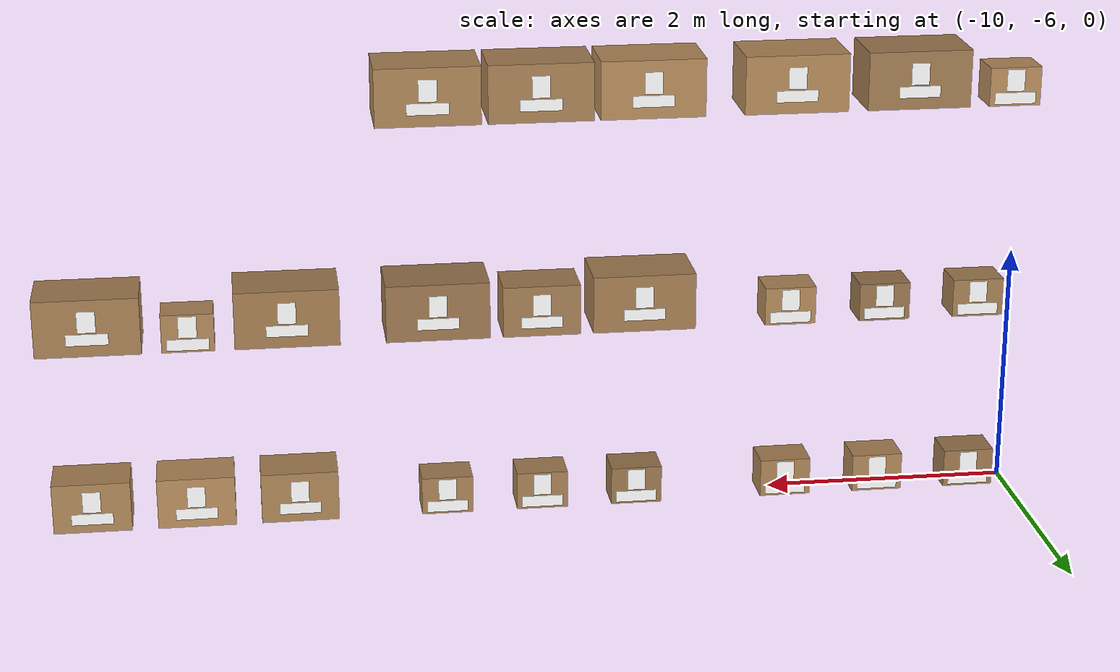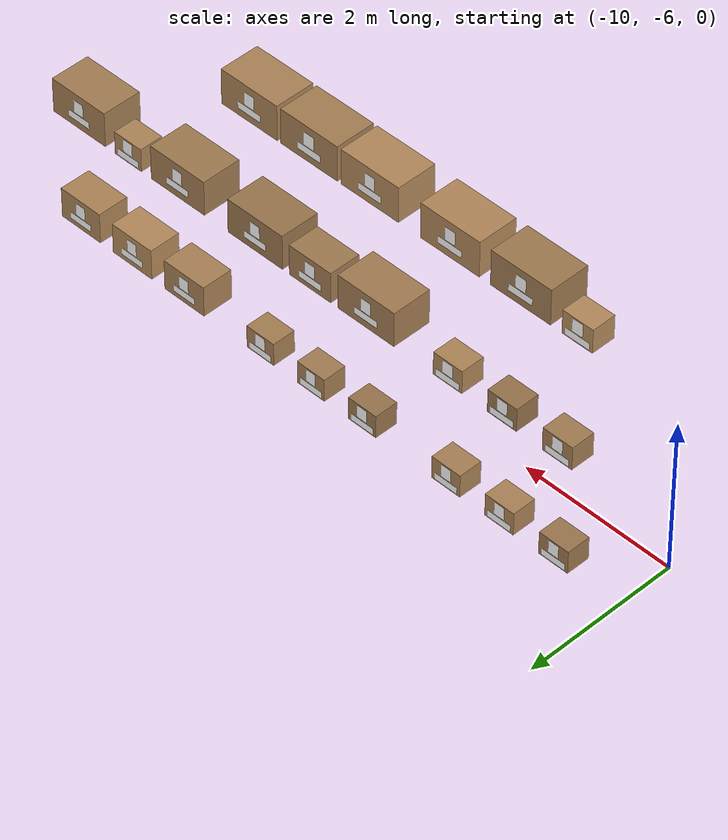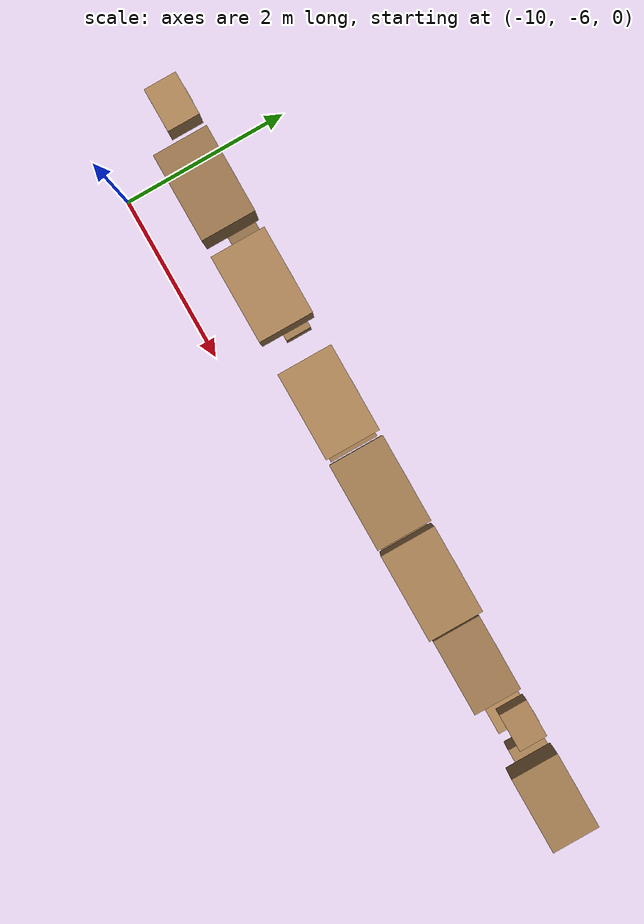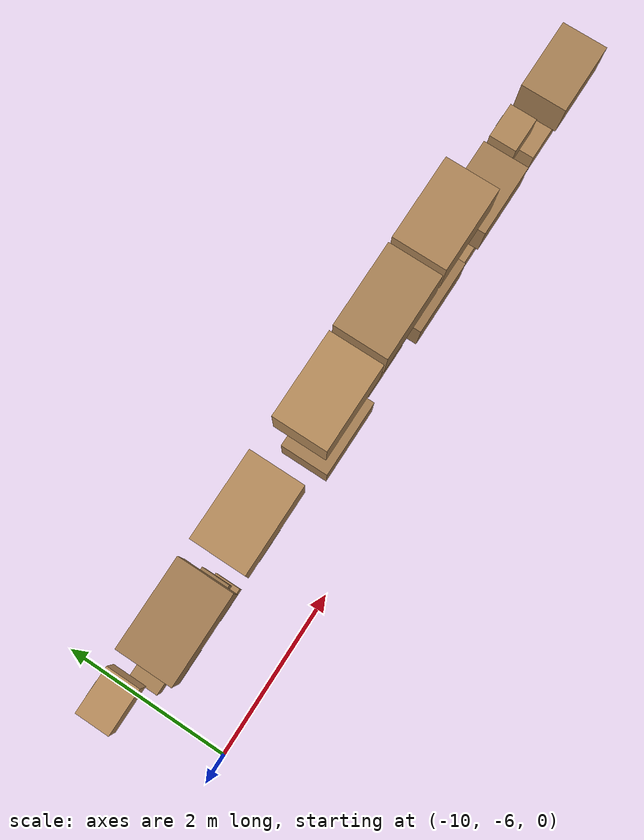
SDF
<sdf version="1.9">
 <world name="warehouse">
  <model name="inventory">
   <static>true</static>
   <link name="box_A_01_1_0">
    <visual name="body">
     <pose>-9.4 -5.07 0.55 0 0 0</pose>
     <geometry><box><size>0.4 0.3 0.3</size></box></geometry>
     <material>
      <ambient>0.308155 0.235648 0.154078 1</ambient>
      <diffuse>0.616311 0.471296 0.308155 1</diffuse>
      <specular>0.05 0.05 0.05 1</specular>
      <pbr><metal><metalness>0.0</metalness><roughness>0.9</roughness></metal></pbr>
     </material>
    </visual>
    <collision name="body_c">
     <pose>-9.4 -5.07 0.55 0 0 0</pose>
     <geometry><box><size>0.4 0.3 0.3</size></box></geometry>
    </collision>
    <visual name="label">
     <pose>-9.4 -4.916 0.6 1.5708 0 3.14159</pose>
     <geometry>
      <mesh><uri>model://warehouse_assets/meshes/label_quad.obj</uri><scale>0.14 0.17 1</scale></mesh>
     </geometry>
     <material>
      <ambient>1 1 1 1</ambient>
      <diffuse>1 1 1 1</diffuse>
      <specular>0 0 0 1</specular>
      <pbr>
       <metal>
        <albedo_map>model://warehouse_assets/materials/textures/box_A0110.png</albedo_map>
        <metalness>0.0</metalness>
        <roughness>1.0</roughness>
       </metal>
      </pbr>
     </material>
    </visual>
    <visual name="placard">
     <pose>-9.4 -4.916 0.46 1.5708 0 3.14159</pose>
     <geometry>
      <mesh><uri>model://warehouse_assets/meshes/label_quad.obj</uri><scale>0.32 0.09 1</scale></mesh>
     </geometry>
     <material>
      <ambient>1 1 1 1</ambient>
      <diffuse>1 1 1 1</diffuse>
      <specular>0 0 0 1</specular>
      <pbr>
       <metal>
        <albedo_map>model://warehouse_assets/materials/textures/placard_A0110.png</albedo_map>
        <metalness>0.0</metalness>
        <roughness>1.0</roughness>
       </metal>
      </pbr>
     </material>
    </visual>
   </link>
   <link name="box_A_01_1_1">
    <visual name="body">
     <pose>-8.65 -5.07 0.55 0 0 0</pose>
     <geometry><box><size>0.4 0.3 0.3</size></box></geometry>
     <material>
      <ambient>0.340595 0.260455 0.170297 1</ambient>
      <diffuse>0.68119 0.52091 0.340595 1</diffuse>
      <specular>0.05 0.05 0.05 1</specular>
      <pbr><metal><metalness>0.0</metalness><roughness>0.9</roughness></metal></pbr>
     </material>
    </visual>
    <collision name="body_c">
     <pose>-8.65 -5.07 0.55 0 0 0</pose>
     <geometry><box><size>0.4 0.3 0.3</size></box></geometry>
    </collision>
    <visual name="label">
     <pose>-8.65 -4.916 0.6 1.5708 0 3.14159</pose>
     <geometry>
      <mesh><uri>model://warehouse_assets/meshes/label_quad.obj</uri><scale>0.14 0.17 1</scale></mesh>
     </geometry>
     <material>
      <ambient>1 1 1 1</ambient>
      <diffuse>1 1 1 1</diffuse>
      <specular>0 0 0 1</specular>
      <pbr>
       <metal>
        <albedo_map>model://warehouse_assets/materials/textures/box_A0111.png</albedo_map>
        <metalness>0.0</metalness>
        <roughness>1.0</roughness>
       </metal>
      </pbr>
     </material>
    </visual>
    <visual name="placard">
     <pose>-8.65 -4.916 0.46 1.5708 0 3.14159</pose>
     <geometry>
      <mesh><uri>model://warehouse_assets/meshes/label_quad.obj</uri><scale>0.32 0.09 1</scale></mesh>
     </geometry>
     <material>
      <ambient>1 1 1 1</ambient>
      <diffuse>1 1 1 1</diffuse>
      <specular>0 0 0 1</specular>
      <pbr>
       <metal>
        <albedo_map>model://warehouse_assets/materials/textures/placard_A0111.png</albedo_map>
        <metalness>0.0</metalness>
        <roughness>1.0</roughness>
       </metal>
      </pbr>
     </material>
    </visual>
   </link>
   <link name="box_A_01_1_2">
    <visual name="body">
     <pose>-7.9 -5.07 0.55 0 0 0</pose>
     <geometry><box><size>0.4 0.3 0.3</size></box></geometry>
     <material>
      <ambient>0.333937 0.255364 0.166969 1</ambient>
      <diffuse>0.667874 0.510727 0.333937 1</diffuse>
      <specular>0.05 0.05 0.05 1</specular>
      <pbr><metal><metalness>0.0</metalness><roughness>0.9</roughness></metal></pbr>
     </material>
    </visual>
    <collision name="body_c">
     <pose>-7.9 -5.07 0.55 0 0 0</pose>
     <geometry><box><size>0.4 0.3 0.3</size></box></geometry>
    </collision>
    <visual name="label">
     <pose>-7.9 -4.916 0.6 1.5708 0 3.14159</pose>
     <geometry>
      <mesh><uri>model://warehouse_assets/meshes/label_quad.obj</uri><scale>0.14 0.17 1</scale></mesh>
     </geometry>
     <material>
      <ambient>1 1 1 1</ambient>
      <diffuse>1 1 1 1</diffuse>
      <specular>0 0 0 1</specular>
      <pbr>
       <metal>
        <albedo_map>model://warehouse_assets/materials/textures/box_A0112.png</albedo_map>
        <metalness>0.0</metalness>
        <roughness>1.0</roughness>
       </metal>
      </pbr>
     </material>
    </visual>
    <visual name="placard">
     <pose>-7.9 -4.916 0.46 1.5708 0 3.14159</pose>
     <geometry>
      <mesh><uri>model://warehouse_assets/meshes/label_quad.obj</uri><scale>0.32 0.09 1</scale></mesh>
     </geometry>
     <material>
      <ambient>1 1 1 1</ambient>
      <diffuse>1 1 1 1</diffuse>
      <specular>0 0 0 1</specular>
      <pbr>
       <metal>
        <albedo_map>model://warehouse_assets/materials/textures/placard_A0112.png</albedo_map>
        <metalness>0.0</metalness>
        <roughness>1.0</roughness>
       </metal>
      </pbr>
     </material>
    </visual>
   </link>
   <link name="box_A_01_2_0">
    <visual name="body">
     <pose>-9.4 -5.07 2 0 0 0</pose>
     <geometry><box><size>0.4 0.3 0.3</size></box></geometry>
     <material>
      <ambient>0.323517 0.247396 0.161759 1</ambient>
      <diffuse>0.647035 0.494791 0.323517 1</diffuse>
      <specular>0.05 0.05 0.05 1</specular>
      <pbr><metal><metalness>0.0</metalness><roughness>0.9</roughness></metal></pbr>
     </material>
    </visual>
    <collision name="body_c">
     <pose>-9.4 -5.07 2 0 0 0</pose>
     <geometry><box><size>0.4 0.3 0.3</size></box></geometry>
    </collision>
    <visual name="label">
     <pose>-9.4 -4.916 2.05 1.5708 0 3.14159</pose>
     <geometry>
      <mesh><uri>model://warehouse_assets/meshes/label_quad.obj</uri><scale>0.14 0.17 1</scale></mesh>
     </geometry>
     <material>
      <ambient>1 1 1 1</ambient>
      <diffuse>1 1 1 1</diffuse>
      <specular>0 0 0 1</specular>
      <pbr>
       <metal>
        <albedo_map>model://warehouse_assets/materials/textures/box_A0120.png</albedo_map>
        <metalness>0.0</metalness>
        <roughness>1.0</roughness>
       </metal>
      </pbr>
     </material>
    </visual>
    <visual name="placard">
     <pose>-9.4 -4.916 1.91 1.5708 0 3.14159</pose>
     <geometry>
      <mesh><uri>model://warehouse_assets/meshes/label_quad.obj</uri><scale>0.32 0.09 1</scale></mesh>
     </geometry>
     <material>
      <ambient>1 1 1 1</ambient>
      <diffuse>1 1 1 1</diffuse>
      <specular>0 0 0 1</specular>
      <pbr>
       <metal>
        <albedo_map>model://warehouse_assets/materials/textures/placard_A0120.png</albedo_map>
        <metalness>0.0</metalness>
        <roughness>1.0</roughness>
       </metal>
      </pbr>
     </material>
    </visual>
   </link>
   <link name="box_A_01_2_1">
    <visual name="body">
     <pose>-8.65 -5.07 2 0 0 0</pose>
     <geometry><box><size>0.4 0.3 0.3</size></box></geometry>
     <material>
      <ambient>0.299613 0.229116 0.149807 1</ambient>
      <diffuse>0.599227 0.458232 0.299613 1</diffuse>
      <specular>0.05 0.05 0.05 1</specular>
      <pbr><metal><metalness>0.0</metalness><roughness>0.9</roughness></metal></pbr>
     </material>
    </visual>
    <collision name="body_c">
     <pose>-8.65 -5.07 2 0 0 0</pose>
     <geometry><box><size>0.4 0.3 0.3</size></box></geometry>
    </collision>
    <visual name="label">
     <pose>-8.65 -4.916 2.05 1.5708 0 3.14159</pose>
     <geometry>
      <mesh><uri>model://warehouse_assets/meshes/label_quad.obj</uri><scale>0.14 0.17 1</scale></mesh>
     </geometry>
     <material>
      <ambient>1 1 1 1</ambient>
      <diffuse>1 1 1 1</diffuse>
      <specular>0 0 0 1</specular>
      <pbr>
       <metal>
        <albedo_map>model://warehouse_assets/materials/textures/box_A0121.png</albedo_map>
        <metalness>0.0</metalness>
        <roughness>1.0</roughness>
       </metal>
      </pbr>
     </material>
    </visual>
    <visual name="placard">
     <pose>-8.65 -4.916 1.91 1.5708 0 3.14159</pose>
     <geometry>
      <mesh><uri>model://warehouse_assets/meshes/label_quad.obj</uri><scale>0.32 0.09 1</scale></mesh>
     </geometry>
     <material>
      <ambient>1 1 1 1</ambient>
      <diffuse>1 1 1 1</diffuse>
      <specular>0 0 0 1</specular>
      <pbr>
       <metal>
        <albedo_map>model://warehouse_assets/materials/textures/placard_A0121.png</albedo_map>
        <metalness>0.0</metalness>
        <roughness>1.0</roughness>
       </metal>
      </pbr>
     </material>
    </visual>
   </link>
   <link name="box_A_01_2_2">
    <visual name="body">
     <pose>-7.9 -5.07 2 0 0 0</pose>
     <geometry><box><size>0.4 0.3 0.3</size></box></geometry>
     <material>
      <ambient>0.347443 0.265692 0.173722 1</ambient>
      <diffuse>0.694887 0.531384 0.347443 1</diffuse>
      <specular>0.05 0.05 0.05 1</specular>
      <pbr><metal><metalness>0.0</metalness><roughness>0.9</roughness></metal></pbr>
     </material>
    </visual>
    <collision name="body_c">
     <pose>-7.9 -5.07 2 0 0 0</pose>
     <geometry><box><size>0.4 0.3 0.3</size></box></geometry>
    </collision>
    <visual name="label">
     <pose>-7.9 -4.916 2.05 1.5708 0 3.14159</pose>
     <geometry>
      <mesh><uri>model://warehouse_assets/meshes/label_quad.obj</uri><scale>0.14 0.17 1</scale></mesh>
     </geometry>
     <material>
      <ambient>1 1 1 1</ambient>
      <diffuse>1 1 1 1</diffuse>
      <specular>0 0 0 1</specular>
      <pbr>
       <metal>
        <albedo_map>model://warehouse_assets/materials/textures/box_A0122.png</albedo_map>
        <metalness>0.0</metalness>
        <roughness>1.0</roughness>
       </metal>
      </pbr>
     </material>
    </visual>
    <visual name="placard">
     <pose>-7.9 -4.916 1.91 1.5708 0 3.14159</pose>
     <geometry>
      <mesh><uri>model://warehouse_assets/meshes/label_quad.obj</uri><scale>0.32 0.09 1</scale></mesh>
     </geometry>
     <material>
      <ambient>1 1 1 1</ambient>
      <diffuse>1 1 1 1</diffuse>
      <specular>0 0 0 1</specular>
      <pbr>
       <metal>
        <albedo_map>model://warehouse_assets/materials/textures/placard_A0122.png</albedo_map>
        <metalness>0.0</metalness>
        <roughness>1.0</roughness>
       </metal>
      </pbr>
     </material>
    </visual>
   </link>
   <link name="box_A_01_3_0">
    <visual name="body">
     <pose>-9.6 -5.07 3.7 0 0 0</pose>
     <geometry><box><size>0.4 0.3 0.3</size></box></geometry>
     <material>
      <ambient>0.358911 0.274461 0.179455 1</ambient>
      <diffuse>0.717822 0.548923 0.358911 1</diffuse>
      <specular>0.05 0.05 0.05 1</specular>
      <pbr><metal><metalness>0.0</metalness><roughness>0.9</roughness></metal></pbr>
     </material>
    </visual>
    <collision name="body_c">
     <pose>-9.6 -5.07 3.7 0 0 0</pose>
     <geometry><box><size>0.4 0.3 0.3</size></box></geometry>
    </collision>
    <visual name="label">
     <pose>-9.6 -4.916 3.75 1.5708 0 3.14159</pose>
     <geometry>
      <mesh><uri>model://warehouse_assets/meshes/label_quad.obj</uri><scale>0.14 0.17 1</scale></mesh>
     </geometry>
     <material>
      <ambient>1 1 1 1</ambient>
      <diffuse>1 1 1 1</diffuse>
      <specular>0 0 0 1</specular>
      <pbr>
       <metal>
        <albedo_map>model://warehouse_assets/materials/textures/box_A0130.png</albedo_map>
        <metalness>0.0</metalness>
        <roughness>1.0</roughness>
       </metal>
      </pbr>
     </material>
    </visual>
    <visual name="placard">
     <pose>-9.6 -4.916 3.61 1.5708 0 3.14159</pose>
     <geometry>
      <mesh><uri>model://warehouse_assets/meshes/label_quad.obj</uri><scale>0.32 0.09 1</scale></mesh>
     </geometry>
     <material>
      <ambient>1 1 1 1</ambient>
      <diffuse>1 1 1 1</diffuse>
      <specular>0 0 0 1</specular>
      <pbr>
       <metal>
        <albedo_map>model://warehouse_assets/materials/textures/placard_A0130.png</albedo_map>
        <metalness>0.0</metalness>
        <roughness>1.0</roughness>
       </metal>
      </pbr>
     </material>
    </visual>
   </link>
   <link name="box_A_01_3_1">
    <visual name="body">
     <pose>-8.85 -5.17 3.775 0 0 0</pose>
     <geometry><box><size>0.8 0.5 0.45</size></box></geometry>
     <material>
      <ambient>0.317168 0.24254 0.158584 1</ambient>
      <diffuse>0.634337 0.485081 0.317168 1</diffuse>
      <specular>0.05 0.05 0.05 1</specular>
      <pbr><metal><metalness>0.0</metalness><roughness>0.9</roughness></metal></pbr>
     </material>
    </visual>
    <collision name="body_c">
     <pose>-8.85 -5.17 3.775 0 0 0</pose>
     <geometry><box><size>0.8 0.5 0.45</size></box></geometry>
    </collision>
    <visual name="label">
     <pose>-8.85 -4.916 3.825 1.5708 0 3.14159</pose>
     <geometry>
      <mesh><uri>model://warehouse_assets/meshes/label_quad.obj</uri><scale>0.14 0.17 1</scale></mesh>
     </geometry>
     <material>
      <ambient>1 1 1 1</ambient>
      <diffuse>1 1 1 1</diffuse>
      <specular>0 0 0 1</specular>
      <pbr>
       <metal>
        <albedo_map>model://warehouse_assets/materials/textures/box_A0131.png</albedo_map>
        <metalness>0.0</metalness>
        <roughness>1.0</roughness>
       </metal>
      </pbr>
     </material>
    </visual>
    <visual name="placard">
     <pose>-8.85 -4.916 3.685 1.5708 0 3.14159</pose>
     <geometry>
      <mesh><uri>model://warehouse_assets/meshes/label_quad.obj</uri><scale>0.32 0.09 1</scale></mesh>
     </geometry>
     <material>
      <ambient>1 1 1 1</ambient>
      <diffuse>1 1 1 1</diffuse>
      <specular>0 0 0 1</specular>
      <pbr>
       <metal>
        <albedo_map>model://warehouse_assets/materials/textures/placard_A0131.png</albedo_map>
        <metalness>0.0</metalness>
        <roughness>1.0</roughness>
       </metal>
      </pbr>
     </material>
    </visual>
   </link>
   <link name="box_A_01_3_2">
    <visual name="body">
     <pose>-7.9 -5.17 3.775 0 0 0</pose>
     <geometry><box><size>0.8 0.5 0.45</size></box></geometry>
     <material>
      <ambient>0.353989 0.270697 0.176994 1</ambient>
      <diffuse>0.707978 0.541395 0.353989 1</diffuse>
      <specular>0.05 0.05 0.05 1</specular>
      <pbr><metal><metalness>0.0</metalness><roughness>0.9</roughness></metal></pbr>
     </material>
    </visual>
    <collision name="body_c">
     <pose>-7.9 -5.17 3.775 0 0 0</pose>
     <geometry><box><size>0.8 0.5 0.45</size></box></geometry>
    </collision>
    <visual name="label">
     <pose>-7.9 -4.916 3.825 1.5708 0 3.14159</pose>
     <geometry>
      <mesh><uri>model://warehouse_assets/meshes/label_quad.obj</uri><scale>0.14 0.17 1</scale></mesh>
     </geometry>
     <material>
      <ambient>1 1 1 1</ambient>
      <diffuse>1 1 1 1</diffuse>
      <specular>0 0 0 1</specular>
      <pbr>
       <metal>
        <albedo_map>model://warehouse_assets/materials/textures/box_A0132.png</albedo_map>
        <metalness>0.0</metalness>
        <roughness>1.0</roughness>
       </metal>
      </pbr>
     </material>
    </visual>
    <visual name="placard">
     <pose>-7.9 -4.916 3.685 1.5708 0 3.14159</pose>
     <geometry>
      <mesh><uri>model://warehouse_assets/meshes/label_quad.obj</uri><scale>0.32 0.09 1</scale></mesh>
     </geometry>
     <material>
      <ambient>1 1 1 1</ambient>
      <diffuse>1 1 1 1</diffuse>
      <specular>0 0 0 1</specular>
      <pbr>
       <metal>
        <albedo_map>model://warehouse_assets/materials/textures/placard_A0132.png</albedo_map>
        <metalness>0.0</metalness>
        <roughness>1.0</roughness>
       </metal>
      </pbr>
     </material>
    </visual>
   </link>
   <link name="box_A_02_1_0">
    <visual name="body">
     <pose>-6.7 -5.07 0.55 0 0 0</pose>
     <geometry><box><size>0.4 0.3 0.3</size></box></geometry>
     <material>
      <ambient>0.302846 0.231588 0.151423 1</ambient>
      <diffuse>0.605692 0.463176 0.302846 1</diffuse>
      <specular>0.05 0.05 0.05 1</specular>
      <pbr><metal><metalness>0.0</metalness><roughness>0.9</roughness></metal></pbr>
     </material>
    </visual>
    <collision name="body_c">
     <pose>-6.7 -5.07 0.55 0 0 0</pose>
     <geometry><box><size>0.4 0.3 0.3</size></box></geometry>
    </collision>
    <visual name="label">
     <pose>-6.7 -4.916 0.6 1.5708 0 3.14159</pose>
     <geometry>
      <mesh><uri>model://warehouse_assets/meshes/label_quad.obj</uri><scale>0.14 0.17 1</scale></mesh>
     </geometry>
     <material>
      <ambient>1 1 1 1</ambient>
      <diffuse>1 1 1 1</diffuse>
      <specular>0 0 0 1</specular>
      <pbr>
       <metal>
        <albedo_map>model://warehouse_assets/materials/textures/box_A0210.png</albedo_map>
        <metalness>0.0</metalness>
        <roughness>1.0</roughness>
       </metal>
      </pbr>
     </material>
    </visual>
    <visual name="placard">
     <pose>-6.7 -4.916 0.46 1.5708 0 3.14159</pose>
     <geometry>
      <mesh><uri>model://warehouse_assets/meshes/label_quad.obj</uri><scale>0.32 0.09 1</scale></mesh>
     </geometry>
     <material>
      <ambient>1 1 1 1</ambient>
      <diffuse>1 1 1 1</diffuse>
      <specular>0 0 0 1</specular>
      <pbr>
       <metal>
        <albedo_map>model://warehouse_assets/materials/textures/placard_A0210.png</albedo_map>
        <metalness>0.0</metalness>
        <roughness>1.0</roughness>
       </metal>
      </pbr>
     </material>
    </visual>
   </link>
   <link name="box_A_02_1_1">
    <visual name="body">
     <pose>-5.95 -5.07 0.55 0 0 0</pose>
     <geometry><box><size>0.4 0.3 0.3</size></box></geometry>
     <material>
      <ambient>0.325424 0.248853 0.162712 1</ambient>
      <diffuse>0.650847 0.497707 0.325424 1</diffuse>
      <specular>0.05 0.05 0.05 1</specular>
      <pbr><metal><metalness>0.0</metalness><roughness>0.9</roughness></metal></pbr>
     </material>
    </visual>
    <collision name="body_c">
     <pose>-5.95 -5.07 0.55 0 0 0</pose>
     <geometry><box><size>0.4 0.3 0.3</size></box></geometry>
    </collision>
    <visual name="label">
     <pose>-5.95 -4.916 0.6 1.5708 0 3.14159</pose>
     <geometry>
      <mesh><uri>model://warehouse_assets/meshes/label_quad.obj</uri><scale>0.14 0.17 1</scale></mesh>
     </geometry>
     <material>
      <ambient>1 1 1 1</ambient>
      <diffuse>1 1 1 1</diffuse>
      <specular>0 0 0 1</specular>
      <pbr>
       <metal>
        <albedo_map>model://warehouse_assets/materials/textures/box_A0211.png</albedo_map>
        <metalness>0.0</metalness>
        <roughness>1.0</roughness>
       </metal>
      </pbr>
     </material>
    </visual>
    <visual name="placard">
     <pose>-5.95 -4.916 0.46 1.5708 0 3.14159</pose>
     <geometry>
      <mesh><uri>model://warehouse_assets/meshes/label_quad.obj</uri><scale>0.32 0.09 1</scale></mesh>
     </geometry>
     <material>
      <ambient>1 1 1 1</ambient>
      <diffuse>1 1 1 1</diffuse>
      <specular>0 0 0 1</specular>
      <pbr>
       <metal>
        <albedo_map>model://warehouse_assets/materials/textures/placard_A0211.png</albedo_map>
        <metalness>0.0</metalness>
        <roughness>1.0</roughness>
       </metal>
      </pbr>
     </material>
    </visual>
   </link>
   <link name="box_A_02_1_2">
    <visual name="body">
     <pose>-5.2 -5.07 0.55 0 0 0</pose>
     <geometry><box><size>0.4 0.3 0.3</size></box></geometry>
     <material>
      <ambient>0.329553 0.252011 0.164777 1</ambient>
      <diffuse>0.659107 0.504023 0.329553 1</diffuse>
      <specular>0.05 0.05 0.05 1</specular>
      <pbr><metal><metalness>0.0</metalness><roughness>0.9</roughness></metal></pbr>
     </material>
    </visual>
    <collision name="body_c">
     <pose>-5.2 -5.07 0.55 0 0 0</pose>
     <geometry><box><size>0.4 0.3 0.3</size></box></geometry>
    </collision>
    <visual name="label">
     <pose>-5.2 -4.916 0.6 1.5708 0 3.14159</pose>
     <geometry>
      <mesh><uri>model://warehouse_assets/meshes/label_quad.obj</uri><scale>0.14 0.17 1</scale></mesh>
     </geometry>
     <material>
      <ambient>1 1 1 1</ambient>
      <diffuse>1 1 1 1</diffuse>
      <specular>0 0 0 1</specular>
      <pbr>
       <metal>
        <albedo_map>model://warehouse_assets/materials/textures/box_A0212.png</albedo_map>
        <metalness>0.0</metalness>
        <roughness>1.0</roughness>
       </metal>
      </pbr>
     </material>
    </visual>
    <visual name="placard">
     <pose>-5.2 -4.916 0.46 1.5708 0 3.14159</pose>
     <geometry>
      <mesh><uri>model://warehouse_assets/meshes/label_quad.obj</uri><scale>0.32 0.09 1</scale></mesh>
     </geometry>
     <material>
      <ambient>1 1 1 1</ambient>
      <diffuse>1 1 1 1</diffuse>
      <specular>0 0 0 1</specular>
      <pbr>
       <metal>
        <albedo_map>model://warehouse_assets/materials/textures/placard_A0212.png</albedo_map>
        <metalness>0.0</metalness>
        <roughness>1.0</roughness>
       </metal>
      </pbr>
     </material>
    </visual>
   </link>
   <link name="box_A_02_2_0">
    <visual name="body">
     <pose>-6.75 -5.17 2.075 0 0 0</pose>
     <geometry><box><size>0.8 0.5 0.45</size></box></geometry>
     <material>
      <ambient>0.321616 0.245942 0.160808 1</ambient>
      <diffuse>0.643232 0.491883 0.321616 1</diffuse>
      <specular>0.05 0.05 0.05 1</specular>
      <pbr><metal><metalness>0.0</metalness><roughness>0.9</roughness></metal></pbr>
     </material>
    </visual>
    <collision name="body_c">
     <pose>-6.75 -5.17 2.075 0 0 0</pose>
     <geometry><box><size>0.8 0.5 0.45</size></box></geometry>
    </collision>
    <visual name="label">
     <pose>-6.75 -4.916 2.125 1.5708 0 3.14159</pose>
     <geometry>
      <mesh><uri>model://warehouse_assets/meshes/label_quad.obj</uri><scale>0.14 0.17 1</scale></mesh>
     </geometry>
     <material>
      <ambient>1 1 1 1</ambient>
      <diffuse>1 1 1 1</diffuse>
      <specular>0 0 0 1</specular>
      <pbr>
       <metal>
        <albedo_map>model://warehouse_assets/materials/textures/box_A0220.png</albedo_map>
        <metalness>0.0</metalness>
        <roughness>1.0</roughness>
       </metal>
      </pbr>
     </material>
    </visual>
    <visual name="placard">
     <pose>-6.75 -4.916 1.985 1.5708 0 3.14159</pose>
     <geometry>
      <mesh><uri>model://warehouse_assets/meshes/label_quad.obj</uri><scale>0.32 0.09 1</scale></mesh>
     </geometry>
     <material>
      <ambient>1 1 1 1</ambient>
      <diffuse>1 1 1 1</diffuse>
      <specular>0 0 0 1</specular>
      <pbr>
       <metal>
        <albedo_map>model://warehouse_assets/materials/textures/placard_A0220.png</albedo_map>
        <metalness>0.0</metalness>
        <roughness>1.0</roughness>
       </metal>
      </pbr>
     </material>
    </visual>
   </link>
   <link name="box_A_02_2_1">
    <visual name="body">
     <pose>-5.95 -5.12 2.05 0 0 0</pose>
     <geometry><box><size>0.6 0.4 0.4</size></box></geometry>
     <material>
      <ambient>0.320874 0.245374 0.160437 1</ambient>
      <diffuse>0.641748 0.490748 0.320874 1</diffuse>
      <specular>0.05 0.05 0.05 1</specular>
      <pbr><metal><metalness>0.0</metalness><roughness>0.9</roughness></metal></pbr>
     </material>
    </visual>
    <collision name="body_c">
     <pose>-5.95 -5.12 2.05 0 0 0</pose>
     <geometry><box><size>0.6 0.4 0.4</size></box></geometry>
    </collision>
    <visual name="label">
     <pose>-5.95 -4.916 2.1 1.5708 0 3.14159</pose>
     <geometry>
      <mesh><uri>model://warehouse_assets/meshes/label_quad.obj</uri><scale>0.14 0.17 1</scale></mesh>
     </geometry>
     <material>
      <ambient>1 1 1 1</ambient>
      <diffuse>1 1 1 1</diffuse>
      <specular>0 0 0 1</specular>
      <pbr>
       <metal>
        <albedo_map>model://warehouse_assets/materials/textures/box_A0221.png</albedo_map>
        <metalness>0.0</metalness>
        <roughness>1.0</roughness>
       </metal>
      </pbr>
     </material>
    </visual>
    <visual name="placard">
     <pose>-5.95 -4.916 1.96 1.5708 0 3.14159</pose>
     <geometry>
      <mesh><uri>model://warehouse_assets/meshes/label_quad.obj</uri><scale>0.32 0.09 1</scale></mesh>
     </geometry>
     <material>
      <ambient>1 1 1 1</ambient>
      <diffuse>1 1 1 1</diffuse>
      <specular>0 0 0 1</specular>
      <pbr>
       <metal>
        <albedo_map>model://warehouse_assets/materials/textures/placard_A0221.png</albedo_map>
        <metalness>0.0</metalness>
        <roughness>1.0</roughness>
       </metal>
      </pbr>
     </material>
    </visual>
   </link>
   <link name="box_A_02_2_2">
    <visual name="body">
     <pose>-5.15 -5.17 2.075 0 0 0</pose>
     <geometry><box><size>0.8 0.5 0.45</size></box></geometry>
     <material>
      <ambient>0.305012 0.233245 0.152506 1</ambient>
      <diffuse>0.610025 0.466489 0.305012 1</diffuse>
      <specular>0.05 0.05 0.05 1</specular>
      <pbr><metal><metalness>0.0</metalness><roughness>0.9</roughness></metal></pbr>
     </material>
    </visual>
    <collision name="body_c">
     <pose>-5.15 -5.17 2.075 0 0 0</pose>
     <geometry><box><size>0.8 0.5 0.45</size></box></geometry>
    </collision>
    <visual name="label">
     <pose>-5.15 -4.916 2.125 1.5708 0 3.14159</pose>
     <geometry>
      <mesh><uri>model://warehouse_assets/meshes/label_quad.obj</uri><scale>0.14 0.17 1</scale></mesh>
     </geometry>
     <material>
      <ambient>1 1 1 1</ambient>
      <diffuse>1 1 1 1</diffuse>
      <specular>0 0 0 1</specular>
      <pbr>
       <metal>
        <albedo_map>model://warehouse_assets/materials/textures/box_A0222.png</albedo_map>
        <metalness>0.0</metalness>
        <roughness>1.0</roughness>
       </metal>
      </pbr>
     </material>
    </visual>
    <visual name="placard">
     <pose>-5.15 -4.916 1.985 1.5708 0 3.14159</pose>
     <geometry>
      <mesh><uri>model://warehouse_assets/meshes/label_quad.obj</uri><scale>0.32 0.09 1</scale></mesh>
     </geometry>
     <material>
      <ambient>1 1 1 1</ambient>
      <diffuse>1 1 1 1</diffuse>
      <specular>0 0 0 1</specular>
      <pbr>
       <metal>
        <albedo_map>model://warehouse_assets/materials/textures/placard_A0222.png</albedo_map>
        <metalness>0.0</metalness>
        <roughness>1.0</roughness>
       </metal>
      </pbr>
     </material>
    </visual>
   </link>
   <link name="box_A_02_3_0">
    <visual name="body">
     <pose>-6.8 -5.17 3.775 0 0 0</pose>
     <geometry><box><size>0.8 0.5 0.45</size></box></geometry>
     <material>
      <ambient>0.356569 0.27267 0.178284 1</ambient>
      <diffuse>0.713137 0.54534 0.356569 1</diffuse>
      <specular>0.05 0.05 0.05 1</specular>
      <pbr><metal><metalness>0.0</metalness><roughness>0.9</roughness></metal></pbr>
     </material>
    </visual>
    <collision name="body_c">
     <pose>-6.8 -5.17 3.775 0 0 0</pose>
     <geometry><box><size>0.8 0.5 0.45</size></box></geometry>
    </collision>
    <visual name="label">
     <pose>-6.8 -4.916 3.825 1.5708 0 3.14159</pose>
     <geometry>
      <mesh><uri>model://warehouse_assets/meshes/label_quad.obj</uri><scale>0.14 0.17 1</scale></mesh>
     </geometry>
     <material>
      <ambient>1 1 1 1</ambient>
      <diffuse>1 1 1 1</diffuse>
      <specular>0 0 0 1</specular>
      <pbr>
       <metal>
        <albedo_map>model://warehouse_assets/materials/textures/box_A0230.png</albedo_map>
        <metalness>0.0</metalness>
        <roughness>1.0</roughness>
       </metal>
      </pbr>
     </material>
    </visual>
    <visual name="placard">
     <pose>-6.8 -4.916 3.685 1.5708 0 3.14159</pose>
     <geometry>
      <mesh><uri>model://warehouse_assets/meshes/label_quad.obj</uri><scale>0.32 0.09 1</scale></mesh>
     </geometry>
     <material>
      <ambient>1 1 1 1</ambient>
      <diffuse>1 1 1 1</diffuse>
      <specular>0 0 0 1</specular>
      <pbr>
       <metal>
        <albedo_map>model://warehouse_assets/materials/textures/placard_A0230.png</albedo_map>
        <metalness>0.0</metalness>
        <roughness>1.0</roughness>
       </metal>
      </pbr>
     </material>
    </visual>
   </link>
   <link name="box_A_02_3_1">
    <visual name="body">
     <pose>-5.95 -5.17 3.775 0 0 0</pose>
     <geometry><box><size>0.8 0.5 0.45</size></box></geometry>
     <material>
      <ambient>0.329956 0.252319 0.164978 1</ambient>
      <diffuse>0.659912 0.504639 0.329956 1</diffuse>
      <specular>0.05 0.05 0.05 1</specular>
      <pbr><metal><metalness>0.0</metalness><roughness>0.9</roughness></metal></pbr>
     </material>
    </visual>
    <collision name="body_c">
     <pose>-5.95 -5.17 3.775 0 0 0</pose>
     <geometry><box><size>0.8 0.5 0.45</size></box></geometry>
    </collision>
    <visual name="label">
     <pose>-5.95 -4.916 3.825 1.5708 0 3.14159</pose>
     <geometry>
      <mesh><uri>model://warehouse_assets/meshes/label_quad.obj</uri><scale>0.14 0.17 1</scale></mesh>
     </geometry>
     <material>
      <ambient>1 1 1 1</ambient>
      <diffuse>1 1 1 1</diffuse>
      <specular>0 0 0 1</specular>
      <pbr>
       <metal>
        <albedo_map>model://warehouse_assets/materials/textures/box_A0231.png</albedo_map>
        <metalness>0.0</metalness>
        <roughness>1.0</roughness>
       </metal>
      </pbr>
     </material>
    </visual>
    <visual name="placard">
     <pose>-5.95 -4.916 3.685 1.5708 0 3.14159</pose>
     <geometry>
      <mesh><uri>model://warehouse_assets/meshes/label_quad.obj</uri><scale>0.32 0.09 1</scale></mesh>
     </geometry>
     <material>
      <ambient>1 1 1 1</ambient>
      <diffuse>1 1 1 1</diffuse>
      <specular>0 0 0 1</specular>
      <pbr>
       <metal>
        <albedo_map>model://warehouse_assets/materials/textures/placard_A0231.png</albedo_map>
        <metalness>0.0</metalness>
        <roughness>1.0</roughness>
       </metal>
      </pbr>
     </material>
    </visual>
   </link>
   <link name="box_A_02_3_2">
    <visual name="body">
     <pose>-5.1 -5.17 3.775 0 0 0</pose>
     <geometry><box><size>0.8 0.5 0.45</size></box></geometry>
     <material>
      <ambient>0.340733 0.260561 0.170367 1</ambient>
      <diffuse>0.681467 0.521122 0.340733 1</diffuse>
      <specular>0.05 0.05 0.05 1</specular>
      <pbr><metal><metalness>0.0</metalness><roughness>0.9</roughness></metal></pbr>
     </material>
    </visual>
    <collision name="body_c">
     <pose>-5.1 -5.17 3.775 0 0 0</pose>
     <geometry><box><size>0.8 0.5 0.45</size></box></geometry>
    </collision>
    <visual name="label">
     <pose>-5.1 -4.916 3.825 1.5708 0 3.14159</pose>
     <geometry>
      <mesh><uri>model://warehouse_assets/meshes/label_quad.obj</uri><scale>0.14 0.17 1</scale></mesh>
     </geometry>
     <material>
      <ambient>1 1 1 1</ambient>
      <diffuse>1 1 1 1</diffuse>
      <specular>0 0 0 1</specular>
      <pbr>
       <metal>
        <albedo_map>model://warehouse_assets/materials/textures/box_A0232.png</albedo_map>
        <metalness>0.0</metalness>
        <roughness>1.0</roughness>
       </metal>
      </pbr>
     </material>
    </visual>
    <visual name="placard">
     <pose>-5.1 -4.916 3.685 1.5708 0 3.14159</pose>
     <geometry>
      <mesh><uri>model://warehouse_assets/meshes/label_quad.obj</uri><scale>0.32 0.09 1</scale></mesh>
     </geometry>
     <material>
      <ambient>1 1 1 1</ambient>
      <diffuse>1 1 1 1</diffuse>
      <specular>0 0 0 1</specular>
      <pbr>
       <metal>
        <albedo_map>model://warehouse_assets/materials/textures/placard_A0232.png</albedo_map>
        <metalness>0.0</metalness>
        <roughness>1.0</roughness>
       </metal>
      </pbr>
     </material>
    </visual>
   </link>
   <link name="box_A_03_1_0">
    <visual name="body">
     <pose>-4.05 -5.12 0.6 0 0 0</pose>
     <geometry><box><size>0.6 0.4 0.4</size></box></geometry>
     <material>
      <ambient>0.336582 0.257386 0.168291 1</ambient>
      <diffuse>0.673165 0.514773 0.336582 1</diffuse>
      <specular>0.05 0.05 0.05 1</specular>
      <pbr><metal><metalness>0.0</metalness><roughness>0.9</roughness></metal></pbr>
     </material>
    </visual>
    <collision name="body_c">
     <pose>-4.05 -5.12 0.6 0 0 0</pose>
     <geometry><box><size>0.6 0.4 0.4</size></box></geometry>
    </collision>
    <visual name="label">
     <pose>-4.05 -4.916 0.65 1.5708 0 3.14159</pose>
     <geometry>
      <mesh><uri>model://warehouse_assets/meshes/label_quad.obj</uri><scale>0.14 0.17 1</scale></mesh>
     </geometry>
     <material>
      <ambient>1 1 1 1</ambient>
      <diffuse>1 1 1 1</diffuse>
      <specular>0 0 0 1</specular>
      <pbr>
       <metal>
        <albedo_map>model://warehouse_assets/materials/textures/box_A0310.png</albedo_map>
        <metalness>0.0</metalness>
        <roughness>1.0</roughness>
       </metal>
      </pbr>
     </material>
    </visual>
    <visual name="placard">
     <pose>-4.05 -4.916 0.51 1.5708 0 3.14159</pose>
     <geometry>
      <mesh><uri>model://warehouse_assets/meshes/label_quad.obj</uri><scale>0.32 0.09 1</scale></mesh>
     </geometry>
     <material>
      <ambient>1 1 1 1</ambient>
      <diffuse>1 1 1 1</diffuse>
      <specular>0 0 0 1</specular>
      <pbr>
       <metal>
        <albedo_map>model://warehouse_assets/materials/textures/placard_A0310.png</albedo_map>
        <metalness>0.0</metalness>
        <roughness>1.0</roughness>
       </metal>
      </pbr>
     </material>
    </visual>
   </link>
   <link name="box_A_03_1_1">
    <visual name="body">
     <pose>-3.25 -5.12 0.6 0 0 0</pose>
     <geometry><box><size>0.6 0.4 0.4</size></box></geometry>
     <material>
      <ambient>0.359419 0.27485 0.17971 1</ambient>
      <diffuse>0.718839 0.5497 0.359419 1</diffuse>
      <specular>0.05 0.05 0.05 1</specular>
      <pbr><metal><metalness>0.0</metalness><roughness>0.9</roughness></metal></pbr>
     </material>
    </visual>
    <collision name="body_c">
     <pose>-3.25 -5.12 0.6 0 0 0</pose>
     <geometry><box><size>0.6 0.4 0.4</size></box></geometry>
    </collision>
    <visual name="label">
     <pose>-3.25 -4.916 0.65 1.5708 0 3.14159</pose>
     <geometry>
      <mesh><uri>model://warehouse_assets/meshes/label_quad.obj</uri><scale>0.14 0.17 1</scale></mesh>
     </geometry>
     <material>
      <ambient>1 1 1 1</ambient>
      <diffuse>1 1 1 1</diffuse>
      <specular>0 0 0 1</specular>
      <pbr>
       <metal>
        <albedo_map>model://warehouse_assets/materials/textures/box_A0311.png</albedo_map>
        <metalness>0.0</metalness>
        <roughness>1.0</roughness>
       </metal>
      </pbr>
     </material>
    </visual>
    <visual name="placard">
     <pose>-3.25 -4.916 0.51 1.5708 0 3.14159</pose>
     <geometry>
      <mesh><uri>model://warehouse_assets/meshes/label_quad.obj</uri><scale>0.32 0.09 1</scale></mesh>
     </geometry>
     <material>
      <ambient>1 1 1 1</ambient>
      <diffuse>1 1 1 1</diffuse>
      <specular>0 0 0 1</specular>
      <pbr>
       <metal>
        <albedo_map>model://warehouse_assets/materials/textures/placard_A0311.png</albedo_map>
        <metalness>0.0</metalness>
        <roughness>1.0</roughness>
       </metal>
      </pbr>
     </material>
    </visual>
   </link>
   <link name="box_A_03_1_2">
    <visual name="body">
     <pose>-2.45 -5.12 0.6 0 0 0</pose>
     <geometry><box><size>0.6 0.4 0.4</size></box></geometry>
     <material>
      <ambient>0.34305 0.262332 0.171525 1</ambient>
      <diffuse>0.6861 0.524665 0.34305 1</diffuse>
      <specular>0.05 0.05 0.05 1</specular>
      <pbr><metal><metalness>0.0</metalness><roughness>0.9</roughness></metal></pbr>
     </material>
    </visual>
    <collision name="body_c">
     <pose>-2.45 -5.12 0.6 0 0 0</pose>
     <geometry><box><size>0.6 0.4 0.4</size></box></geometry>
    </collision>
    <visual name="label">
     <pose>-2.45 -4.916 0.65 1.5708 0 3.14159</pose>
     <geometry>
      <mesh><uri>model://warehouse_assets/meshes/label_quad.obj</uri><scale>0.14 0.17 1</scale></mesh>
     </geometry>
     <material>
      <ambient>1 1 1 1</ambient>
      <diffuse>1 1 1 1</diffuse>
      <specular>0 0 0 1</specular>
      <pbr>
       <metal>
        <albedo_map>model://warehouse_assets/materials/textures/box_A0312.png</albedo_map>
        <metalness>0.0</metalness>
        <roughness>1.0</roughness>
       </metal>
      </pbr>
     </material>
    </visual>
    <visual name="placard">
     <pose>-2.45 -4.916 0.51 1.5708 0 3.14159</pose>
     <geometry>
      <mesh><uri>model://warehouse_assets/meshes/label_quad.obj</uri><scale>0.32 0.09 1</scale></mesh>
     </geometry>
     <material>
      <ambient>1 1 1 1</ambient>
      <diffuse>1 1 1 1</diffuse>
      <specular>0 0 0 1</specular>
      <pbr>
       <metal>
        <albedo_map>model://warehouse_assets/materials/textures/placard_A0312.png</albedo_map>
        <metalness>0.0</metalness>
        <roughness>1.0</roughness>
       </metal>
      </pbr>
     </material>
    </visual>
   </link>
   <link name="box_A_03_2_0">
    <visual name="body">
     <pose>-4 -5.17 2.075 0 0 0</pose>
     <geometry><box><size>0.8 0.5 0.45</size></box></geometry>
     <material>
      <ambient>0.321075 0.245528 0.160537 1</ambient>
      <diffuse>0.64215 0.491056 0.321075 1</diffuse>
      <specular>0.05 0.05 0.05 1</specular>
      <pbr><metal><metalness>0.0</metalness><roughness>0.9</roughness></metal></pbr>
     </material>
    </visual>
    <collision name="body_c">
     <pose>-4 -5.17 2.075 0 0 0</pose>
     <geometry><box><size>0.8 0.5 0.45</size></box></geometry>
    </collision>
    <visual name="label">
     <pose>-4 -4.916 2.125 1.5708 0 3.14159</pose>
     <geometry>
      <mesh><uri>model://warehouse_assets/meshes/label_quad.obj</uri><scale>0.14 0.17 1</scale></mesh>
     </geometry>
     <material>
      <ambient>1 1 1 1</ambient>
      <diffuse>1 1 1 1</diffuse>
      <specular>0 0 0 1</specular>
      <pbr>
       <metal>
        <albedo_map>model://warehouse_assets/materials/textures/box_A0320.png</albedo_map>
        <metalness>0.0</metalness>
        <roughness>1.0</roughness>
       </metal>
      </pbr>
     </material>
    </visual>
    <visual name="placard">
     <pose>-4 -4.916 1.985 1.5708 0 3.14159</pose>
     <geometry>
      <mesh><uri>model://warehouse_assets/meshes/label_quad.obj</uri><scale>0.32 0.09 1</scale></mesh>
     </geometry>
     <material>
      <ambient>1 1 1 1</ambient>
      <diffuse>1 1 1 1</diffuse>
      <specular>0 0 0 1</specular>
      <pbr>
       <metal>
        <albedo_map>model://warehouse_assets/materials/textures/placard_A0320.png</albedo_map>
        <metalness>0.0</metalness>
        <roughness>1.0</roughness>
       </metal>
      </pbr>
     </material>
    </visual>
   </link>
   <link name="box_A_03_2_1">
    <visual name="body">
     <pose>-3.25 -5.07 2 0 0 0</pose>
     <geometry><box><size>0.4 0.3 0.3</size></box></geometry>
     <material>
      <ambient>0.345098 0.263898 0.172549 1</ambient>
      <diffuse>0.690195 0.527796 0.345098 1</diffuse>
      <specular>0.05 0.05 0.05 1</specular>
      <pbr><metal><metalness>0.0</metalness><roughness>0.9</roughness></metal></pbr>
     </material>
    </visual>
    <collision name="body_c">
     <pose>-3.25 -5.07 2 0 0 0</pose>
     <geometry><box><size>0.4 0.3 0.3</size></box></geometry>
    </collision>
    <visual name="label">
     <pose>-3.25 -4.916 2.05 1.5708 0 3.14159</pose>
     <geometry>
      <mesh><uri>model://warehouse_assets/meshes/label_quad.obj</uri><scale>0.14 0.17 1</scale></mesh>
     </geometry>
     <material>
      <ambient>1 1 1 1</ambient>
      <diffuse>1 1 1 1</diffuse>
      <specular>0 0 0 1</specular>
      <pbr>
       <metal>
        <albedo_map>model://warehouse_assets/materials/textures/box_A0321.png</albedo_map>
        <metalness>0.0</metalness>
        <roughness>1.0</roughness>
       </metal>
      </pbr>
     </material>
    </visual>
    <visual name="placard">
     <pose>-3.25 -4.916 1.91 1.5708 0 3.14159</pose>
     <geometry>
      <mesh><uri>model://warehouse_assets/meshes/label_quad.obj</uri><scale>0.32 0.09 1</scale></mesh>
     </geometry>
     <material>
      <ambient>1 1 1 1</ambient>
      <diffuse>1 1 1 1</diffuse>
      <specular>0 0 0 1</specular>
      <pbr>
       <metal>
        <albedo_map>model://warehouse_assets/materials/textures/placard_A0321.png</albedo_map>
        <metalness>0.0</metalness>
        <roughness>1.0</roughness>
       </metal>
      </pbr>
     </material>
    </visual>
   </link>
   <link name="box_A_03_2_2">
    <visual name="body">
     <pose>-2.5 -5.17 2.075 0 0 0</pose>
     <geometry><box><size>0.8 0.5 0.45</size></box></geometry>
     <material>
      <ambient>0.32717 0.250189 0.163585 1</ambient>
      <diffuse>0.654341 0.500378 0.32717 1</diffuse>
      <specular>0.05 0.05 0.05 1</specular>
      <pbr><metal><metalness>0.0</metalness><roughness>0.9</roughness></metal></pbr>
     </material>
    </visual>
    <collision name="body_c">
     <pose>-2.5 -5.17 2.075 0 0 0</pose>
     <geometry><box><size>0.8 0.5 0.45</size></box></geometry>
    </collision>
    <visual name="label">
     <pose>-2.5 -4.916 2.125 1.5708 0 3.14159</pose>
     <geometry>
      <mesh><uri>model://warehouse_assets/meshes/label_quad.obj</uri><scale>0.14 0.17 1</scale></mesh>
     </geometry>
     <material>
      <ambient>1 1 1 1</ambient>
      <diffuse>1 1 1 1</diffuse>
      <specular>0 0 0 1</specular>
      <pbr>
       <metal>
        <albedo_map>model://warehouse_assets/materials/textures/box_A0322.png</albedo_map>
        <metalness>0.0</metalness>
        <roughness>1.0</roughness>
       </metal>
      </pbr>
     </material>
    </visual>
    <visual name="placard">
     <pose>-2.5 -4.916 1.985 1.5708 0 3.14159</pose>
     <geometry>
      <mesh><uri>model://warehouse_assets/meshes/label_quad.obj</uri><scale>0.32 0.09 1</scale></mesh>
     </geometry>
     <material>
      <ambient>1 1 1 1</ambient>
      <diffuse>1 1 1 1</diffuse>
      <specular>0 0 0 1</specular>
      <pbr>
       <metal>
        <albedo_map>model://warehouse_assets/materials/textures/placard_A0322.png</albedo_map>
        <metalness>0.0</metalness>
        <roughness>1.0</roughness>
       </metal>
      </pbr>
     </material>
    </visual>
   </link>
  </model>
 </world>
</sdf>
